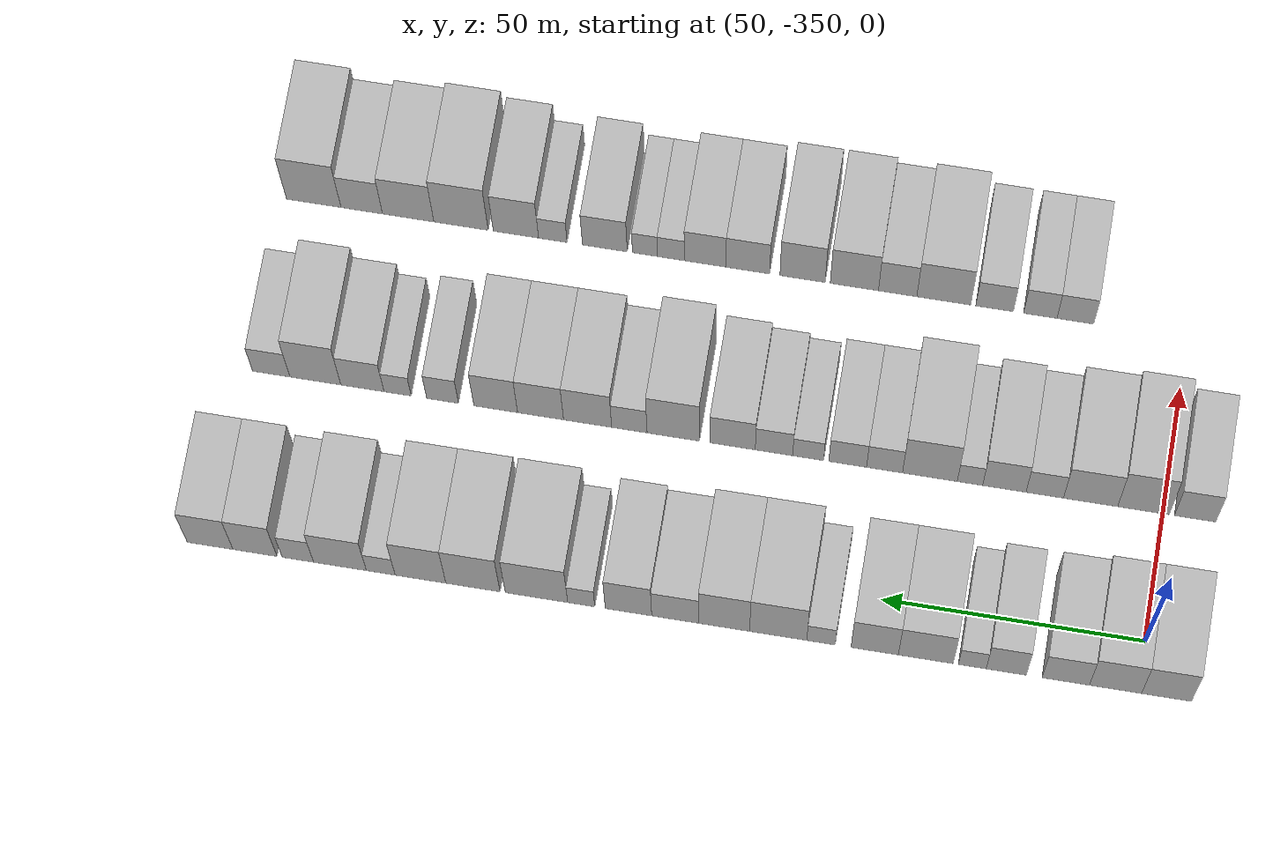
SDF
<sdf version="1.6">
 <world name="default">
  <model name="building_1">
   <static>1</static>
   <pose>50.0000 -355.3003 0 0.000000 0.000000 0.000000</pose>
   <link name="link">
    <pose>0 0 10.50 0 0 0</pose>
    <collision name="collision"><geometry><box><size>20.0000 9.3994 21.0000</size></box></geometry></collision>
    <visual name="visual">
     <cast_shadows>0</cast_shadows>
     <geometry><box><size>20.0000 9.3994 21.0000</size></box></geometry>
     <material>
      <script>
       <uri>model://HANNAS_wall/materials/scripts</uri>
       <uri>model://HANNAS_wall/materials/textures</uri>
       <name>vrc/HANNAS_wall</name>
      </script>
     </material>
    </visual>
   </link>
  </model>
  <model name="building_2">
   <static>1</static>
   <pose>50.0000 -345.6907 0 0.000000 0.000000 0.000000</pose>
   <link name="link">
    <pose>0 0 10.50 0 0 0</pose>
    <collision name="collision"><geometry><box><size>20.0000 9.8198 21.0000</size></box></geometry></collision>
    <visual name="visual">
     <cast_shadows>0</cast_shadows>
     <geometry><box><size>20.0000 9.8198 21.0000</size></box></geometry>
     <material>
      <script>
       <uri>model://HANNAS_wall/materials/scripts</uri>
       <uri>model://HANNAS_wall/materials/textures</uri>
       <name>vrc/HANNAS_wall</name>
      </script>
     </material>
    </visual>
   </link>
  </model>
  <model name="building_3">
   <static>1</static>
   <pose>50.0000 -336.3098 0 0.000000 0.000000 0.000000</pose>
   <link name="link">
    <pose>0 0 9.00 0 0 0</pose>
    <collision name="collision"><geometry><box><size>20.0000 8.9419 18.0000</size></box></geometry></collision>
    <visual name="visual">
     <cast_shadows>0</cast_shadows>
     <geometry><box><size>20.0000 8.9419 18.0000</size></box></geometry>
     <material>
      <script>
       <uri>model://HANNAS_wall/materials/scripts</uri>
       <uri>model://HANNAS_wall/materials/textures</uri>
       <name>vrc/HANNAS_wall</name>
      </script>
     </material>
    </visual>
   </link>
  </model>
  <model name="building_4">
   <static>1</static>
   <pose>50.0000 -325.0578 0 0.000000 0.000000 0.000000</pose>
   <link name="link">
    <pose>0 0 9.00 0 0 0</pose>
    <collision name="collision"><geometry><box><size>20.0000 7.5621 18.0000</size></box></geometry></collision>
    <visual name="visual">
     <cast_shadows>0</cast_shadows>
     <geometry><box><size>20.0000 7.5621 18.0000</size></box></geometry>
     <material>
      <script>
       <uri>model://HANNAS_wall/materials/scripts</uri>
       <uri>model://HANNAS_wall/materials/textures</uri>
       <name>vrc/HANNAS_wall</name>
      </script>
     </material>
    </visual>
   </link>
  </model>
  <model name="building_5">
   <static>1</static>
   <pose>50.0000 -318.6522 0 0.000000 0.000000 0.000000</pose>
   <link name="link">
    <pose>0 0 6.00 0 0 0</pose>
    <collision name="collision"><geometry><box><size>20.0000 5.2492 12.0000</size></box></geometry></collision>
    <visual name="visual">
     <cast_shadows>0</cast_shadows>
     <geometry><box><size>20.0000 5.2492 12.0000</size></box></geometry>
     <material>
      <script>
       <uri>model://HANNAS_wall/materials/scripts</uri>
       <uri>model://HANNAS_wall/materials/textures</uri>
       <name>vrc/HANNAS_wall</name>
      </script>
     </material>
    </visual>
   </link>
  </model>
  <model name="building_6">
   <static>1</static>
   <pose>50.0000 -309.8411 0 0.000000 0.000000 0.000000</pose>
   <link name="link">
    <pose>0 0 10.50 0 0 0</pose>
    <collision name="collision"><geometry><box><size>20.0000 10.3729 21.0000</size></box></geometry></collision>
    <visual name="visual">
     <cast_shadows>0</cast_shadows>
     <geometry><box><size>20.0000 10.3729 21.0000</size></box></geometry>
     <material>
      <script>
       <uri>model://HANNAS_wall/materials/scripts</uri>
       <uri>model://HANNAS_wall/materials/textures</uri>
       <name>vrc/HANNAS_wall</name>
      </script>
     </material>
    </visual>
   </link>
  </model>
  <model name="building_7">
   <static>1</static>
   <pose>50.0000 -300.1779 0 0.000000 0.000000 0.000000</pose>
   <link name="link">
    <pose>0 0 10.50 0 0 0</pose>
    <collision name="collision"><geometry><box><size>20.0000 8.9536 21.0000</size></box></geometry></collision>
    <visual name="visual">
     <cast_shadows>0</cast_shadows>
     <geometry><box><size>20.0000 8.9536 21.0000</size></box></geometry>
     <material>
      <script>
       <uri>model://HANNAS_wall/materials/scripts</uri>
       <uri>model://HANNAS_wall/materials/textures</uri>
       <name>vrc/HANNAS_wall</name>
      </script>
     </material>
    </visual>
   </link>
  </model>
  <model name="building_8">
   <static>1</static>
   <pose>50.0000 -290.0002 0 0.000000 0.000000 0.000000</pose>
   <link name="link">
    <pose>0 0 6.00 0 0 0</pose>
    <collision name="collision"><geometry><box><size>20.0000 5.4017 12.0000</size></box></geometry></collision>
    <visual name="visual">
     <cast_shadows>0</cast_shadows>
     <geometry><box><size>20.0000 5.4017 12.0000</size></box></geometry>
     <material>
      <script>
       <uri>model://HANNAS_wall/materials/scripts</uri>
       <uri>model://HANNAS_wall/materials/textures</uri>
       <name>vrc/HANNAS_wall</name>
      </script>
     </material>
    </visual>
   </link>
  </model>
  <model name="building_9">
   <static>1</static>
   <pose>50.0000 -281.8880 0 0.000000 0.000000 0.000000</pose>
   <link name="link">
    <pose>0 0 12.00 0 0 0</pose>
    <collision name="collision"><geometry><box><size>20.0000 10.8225 24.0000</size></box></geometry></collision>
    <visual name="visual">
     <cast_shadows>0</cast_shadows>
     <geometry><box><size>20.0000 10.8225 24.0000</size></box></geometry>
     <material>
      <script>
       <uri>model://HANNAS_wall/materials/scripts</uri>
       <uri>model://HANNAS_wall/materials/textures</uri>
       <name>vrc/HANNAS_wall</name>
      </script>
     </material>
    </visual>
   </link>
  </model>
  <model name="building_10">
   <static>1</static>
   <pose>50.0000 -271.6227 0 0.000000 0.000000 0.000000</pose>
   <link name="link">
    <pose>0 0 12.00 0 0 0</pose>
    <collision name="collision"><geometry><box><size>20.0000 9.7080 24.0000</size></box></geometry></collision>
    <visual name="visual">
     <cast_shadows>0</cast_shadows>
     <geometry><box><size>20.0000 9.7080 24.0000</size></box></geometry>
     <material>
      <script>
       <uri>model://HANNAS_wall/materials/scripts</uri>
       <uri>model://HANNAS_wall/materials/textures</uri>
       <name>vrc/HANNAS_wall</name>
      </script>
     </material>
    </visual>
   </link>
  </model>
  <model name="building_11">
   <static>1</static>
   <pose>50.0000 -262.3106 0 0.000000 0.000000 0.000000</pose>
   <link name="link">
    <pose>0 0 9.00 0 0 0</pose>
    <collision name="collision"><geometry><box><size>20.0000 8.9163 18.0000</size></box></geometry></collision>
    <visual name="visual">
     <cast_shadows>0</cast_shadows>
     <geometry><box><size>20.0000 8.9163 18.0000</size></box></geometry>
     <material>
      <script>
       <uri>model://HANNAS_wall/materials/scripts</uri>
       <uri>model://HANNAS_wall/materials/textures</uri>
       <name>vrc/HANNAS_wall</name>
      </script>
     </material>
    </visual>
   </link>
  </model>
  <model name="building_12">
   <static>1</static>
   <pose>50.0000 -253.4415 0 0.000000 0.000000 0.000000</pose>
   <link name="link">
    <pose>0 0 10.50 0 0 0</pose>
    <collision name="collision"><geometry><box><size>20.0000 8.8218 21.0000</size></box></geometry></collision>
    <visual name="visual">
     <cast_shadows>0</cast_shadows>
     <geometry><box><size>20.0000 8.8218 21.0000</size></box></geometry>
     <material>
      <script>
       <uri>model://HANNAS_wall/materials/scripts</uri>
       <uri>model://HANNAS_wall/materials/textures</uri>
       <name>vrc/HANNAS_wall</name>
      </script>
     </material>
    </visual>
   </link>
  </model>
  <model name="building_13">
   <static>1</static>
   <pose>50.0000 -244.4483 0 0.000000 0.000000 0.000000</pose>
   <link name="link">
    <pose>0 0 6.00 0 0 0</pose>
    <collision name="collision"><geometry><box><size>20.0000 5.1646 12.0000</size></box></geometry></collision>
    <visual name="visual">
     <cast_shadows>0</cast_shadows>
     <geometry><box><size>20.0000 5.1646 12.0000</size></box></geometry>
     <material>
      <script>
       <uri>model://HANNAS_wall/materials/scripts</uri>
       <uri>model://HANNAS_wall/materials/textures</uri>
       <name>vrc/HANNAS_wall</name>
      </script>
     </material>
    </visual>
   </link>
  </model>
  <model name="building_14">
   <static>1</static>
   <pose>50.0000 -235.9190 0 0.000000 0.000000 0.000000</pose>
   <link name="link">
    <pose>0 0 12.00 0 0 0</pose>
    <collision name="collision"><geometry><box><size>20.0000 11.8939 24.0000</size></box></geometry></collision>
    <visual name="visual">
     <cast_shadows>0</cast_shadows>
     <geometry><box><size>20.0000 11.8939 24.0000</size></box></geometry>
     <material>
      <script>
       <uri>model://HANNAS_wall/materials/scripts</uri>
       <uri>model://HANNAS_wall/materials/textures</uri>
       <name>vrc/HANNAS_wall</name>
      </script>
     </material>
    </visual>
   </link>
  </model>
  <model name="building_15">
   <static>1</static>
   <pose>50.0000 -223.7970 0 0.000000 0.000000 0.000000</pose>
   <link name="link">
    <pose>0 0 12.00 0 0 0</pose>
    <collision name="collision"><geometry><box><size>20.0000 10.3501 24.0000</size></box></geometry></collision>
    <visual name="visual">
     <cast_shadows>0</cast_shadows>
     <geometry><box><size>20.0000 10.3501 24.0000</size></box></geometry>
     <material>
      <script>
       <uri>model://HANNAS_wall/materials/scripts</uri>
       <uri>model://HANNAS_wall/materials/textures</uri>
       <name>vrc/HANNAS_wall</name>
      </script>
     </material>
    </visual>
   </link>
  </model>
  <model name="building_16">
   <static>1</static>
   <pose>50.0000 -213.7750 0 0.000000 0.000000 0.000000</pose>
   <link name="link">
    <pose>0 0 12.00 0 0 0</pose>
    <collision name="collision"><geometry><box><size>20.0000 9.6940 24.0000</size></box></geometry></collision>
    <visual name="visual">
     <cast_shadows>0</cast_shadows>
     <geometry><box><size>20.0000 9.6940 24.0000</size></box></geometry>
     <material>
      <script>
       <uri>model://HANNAS_wall/materials/scripts</uri>
       <uri>model://HANNAS_wall/materials/textures</uri>
       <name>vrc/HANNAS_wall</name>
      </script>
     </material>
    </visual>
   </link>
  </model>
  <model name="building_17">
   <static>1</static>
   <pose>50.0000 -206.1758 0 0.000000 0.000000 0.000000</pose>
   <link name="link">
    <pose>0 0 6.00 0 0 0</pose>
    <collision name="collision"><geometry><box><size>20.0000 5.5044 12.0000</size></box></geometry></collision>
    <visual name="visual">
     <cast_shadows>0</cast_shadows>
     <geometry><box><size>20.0000 5.5044 12.0000</size></box></geometry>
     <material>
      <script>
       <uri>model://HANNAS_wall/materials/scripts</uri>
       <uri>model://HANNAS_wall/materials/textures</uri>
       <name>vrc/HANNAS_wall</name>
      </script>
     </material>
    </visual>
   </link>
  </model>
  <model name="building_18">
   <static>1</static>
   <pose>50.0000 -198.3676 0 0.000000 0.000000 0.000000</pose>
   <link name="link">
    <pose>0 0 10.50 0 0 0</pose>
    <collision name="collision"><geometry><box><size>20.0000 10.1119 21.0000</size></box></geometry></collision>
    <visual name="visual">
     <cast_shadows>0</cast_shadows>
     <geometry><box><size>20.0000 10.1119 21.0000</size></box></geometry>
     <material>
      <script>
       <uri>model://HANNAS_wall/materials/scripts</uri>
       <uri>model://HANNAS_wall/materials/textures</uri>
       <name>vrc/HANNAS_wall</name>
      </script>
     </material>
    </visual>
   </link>
  </model>
  <model name="building_19">
   <static>1</static>
   <pose>50.0000 -190.3090 0 0.000000 0.000000 0.000000</pose>
   <link name="link">
    <pose>0 0 7.50 0 0 0</pose>
    <collision name="collision"><geometry><box><size>20.0000 6.0053 15.0000</size></box></geometry></collision>
    <visual name="visual">
     <cast_shadows>0</cast_shadows>
     <geometry><box><size>20.0000 6.0053 15.0000</size></box></geometry>
     <material>
      <script>
       <uri>model://HANNAS_wall/materials/scripts</uri>
       <uri>model://HANNAS_wall/materials/textures</uri>
       <name>vrc/HANNAS_wall</name>
      </script>
     </material>
    </visual>
   </link>
  </model>
  <model name="building_20">
   <static>1</static>
   <pose>50.0000 -182.0856 0 0.000000 0.000000 0.000000</pose>
   <link name="link">
    <pose>0 0 10.50 0 0 0</pose>
    <collision name="collision"><geometry><box><size>20.0000 8.4416 21.0000</size></box></geometry></collision>
    <visual name="visual">
     <cast_shadows>0</cast_shadows>
     <geometry><box><size>20.0000 8.4416 21.0000</size></box></geometry>
     <material>
      <script>
       <uri>model://HANNAS_wall/materials/scripts</uri>
       <uri>model://HANNAS_wall/materials/textures</uri>
       <name>vrc/HANNAS_wall</name>
      </script>
     </material>
    </visual>
   </link>
  </model>
  <model name="building_21">
   <static>1</static>
   <pose>50.0000 -173.4730 0 0.000000 0.000000 0.000000</pose>
   <link name="link">
    <pose>0 0 10.50 0 0 0</pose>
    <collision name="collision"><geometry><box><size>20.0000 8.7835 21.0000</size></box></geometry></collision>
    <visual name="visual">
     <cast_shadows>0</cast_shadows>
     <geometry><box><size>20.0000 8.7835 21.0000</size></box></geometry>
     <material>
      <script>
       <uri>model://HANNAS_wall/materials/scripts</uri>
       <uri>model://HANNAS_wall/materials/textures</uri>
       <name>vrc/HANNAS_wall</name>
      </script>
     </material>
    </visual>
   </link>
  </model>
  <model name="building_79">
   <static>1</static>
   <pose>85.0000 -356.0684 0 0.000000 0.000000 0.000000</pose>
   <link name="link">
    <pose>0 0 9.00 0 0 0</pose>
    <collision name="collision"><geometry><box><size>20.0000 7.8632 18.0000</size></box></geometry></collision>
    <visual name="visual">
     <cast_shadows>0</cast_shadows>
     <geometry><box><size>20.0000 7.8632 18.0000</size></box></geometry>
     <material>
      <script>
       <uri>model://HANNAS_wall/materials/scripts</uri>
       <uri>model://HANNAS_wall/materials/textures</uri>
       <name>vrc/HANNAS_wall</name>
      </script>
     </material>
    </visual>
   </link>
  </model>
  <model name="building_80">
   <static>1</static>
   <pose>85.0000 -346.2287 0 0.000000 0.000000 0.000000</pose>
   <link name="link">
    <pose>0 0 12.00 0 0 0</pose>
    <collision name="collision"><geometry><box><size>20.0000 9.8162 24.0000</size></box></geometry></collision>
    <visual name="visual">
     <cast_shadows>0</cast_shadows>
     <geometry><box><size>20.0000 9.8162 24.0000</size></box></geometry>
     <material>
      <script>
       <uri>model://HANNAS_wall/materials/scripts</uri>
       <uri>model://HANNAS_wall/materials/textures</uri>
       <name>vrc/HANNAS_wall</name>
      </script>
     </material>
    </visual>
   </link>
  </model>
  <model name="building_81">
   <static>1</static>
   <pose>85.0000 -336.1453 0 0.000000 0.000000 0.000000</pose>
   <link name="link">
    <pose>0 0 10.50 0 0 0</pose>
    <collision name="collision"><geometry><box><size>20.0000 10.3506 21.0000</size></box></geometry></collision>
    <visual name="visual">
     <cast_shadows>0</cast_shadows>
     <geometry><box><size>20.0000 10.3506 21.0000</size></box></geometry>
     <material>
      <script>
       <uri>model://HANNAS_wall/materials/scripts</uri>
       <uri>model://HANNAS_wall/materials/textures</uri>
       <name>vrc/HANNAS_wall</name>
      </script>
     </material>
    </visual>
   </link>
  </model>
  <model name="building_82">
   <static>1</static>
   <pose>85.0000 -327.3931 0 0.000000 0.000000 0.000000</pose>
   <link name="link">
    <pose>0 0 7.50 0 0 0</pose>
    <collision name="collision"><geometry><box><size>20.0000 7.1538 15.0000</size></box></geometry></collision>
    <visual name="visual">
     <cast_shadows>0</cast_shadows>
     <geometry><box><size>20.0000 7.1538 15.0000</size></box></geometry>
     <material>
      <script>
       <uri>model://HANNAS_wall/materials/scripts</uri>
       <uri>model://HANNAS_wall/materials/textures</uri>
       <name>vrc/HANNAS_wall</name>
      </script>
     </material>
    </visual>
   </link>
  </model>
  <model name="building_83">
   <static>1</static>
   <pose>85.0000 -319.6763 0 0.000000 0.000000 0.000000</pose>
   <link name="link">
    <pose>0 0 9.00 0 0 0</pose>
    <collision name="collision"><geometry><box><size>20.0000 8.2796 18.0000</size></box></geometry></collision>
    <visual name="visual">
     <cast_shadows>0</cast_shadows>
     <geometry><box><size>20.0000 8.2796 18.0000</size></box></geometry>
     <material>
      <script>
       <uri>model://HANNAS_wall/materials/scripts</uri>
       <uri>model://HANNAS_wall/materials/textures</uri>
       <name>vrc/HANNAS_wall</name>
      </script>
     </material>
    </visual>
   </link>
  </model>
  <model name="building_84">
   <static>1</static>
   <pose>85.0000 -313.1034 0 0.000000 0.000000 0.000000</pose>
   <link name="link">
    <pose>0 0 6.00 0 0 0</pose>
    <collision name="collision"><geometry><box><size>20.0000 4.8662 12.0000</size></box></geometry></collision>
    <visual name="visual">
     <cast_shadows>0</cast_shadows>
     <geometry><box><size>20.0000 4.8662 12.0000</size></box></geometry>
     <material>
      <script>
       <uri>model://HANNAS_wall/materials/scripts</uri>
       <uri>model://HANNAS_wall/materials/textures</uri>
       <name>vrc/HANNAS_wall</name>
      </script>
     </material>
    </visual>
   </link>
  </model>
  <model name="building_85">
   <static>1</static>
   <pose>85.0000 -305.4305 0 0.000000 0.000000 0.000000</pose>
   <link name="link">
    <pose>0 0 12.00 0 0 0</pose>
    <collision name="collision"><geometry><box><size>20.0000 10.4797 24.0000</size></box></geometry></collision>
    <visual name="visual">
     <cast_shadows>0</cast_shadows>
     <geometry><box><size>20.0000 10.4797 24.0000</size></box></geometry>
     <material>
      <script>
       <uri>model://HANNAS_wall/materials/scripts</uri>
       <uri>model://HANNAS_wall/materials/textures</uri>
       <name>vrc/HANNAS_wall</name>
      </script>
     </material>
    </visual>
   </link>
  </model>
  <model name="building_86">
   <static>1</static>
   <pose>85.0000 -296.7447 0 0.000000 0.000000 0.000000</pose>
   <link name="link">
    <pose>0 0 7.50 0 0 0</pose>
    <collision name="collision"><geometry><box><size>20.0000 6.8918 15.0000</size></box></geometry></collision>
    <visual name="visual">
     <cast_shadows>0</cast_shadows>
     <geometry><box><size>20.0000 6.8918 15.0000</size></box></geometry>
     <material>
      <script>
       <uri>model://HANNAS_wall/materials/scripts</uri>
       <uri>model://HANNAS_wall/materials/textures</uri>
       <name>vrc/HANNAS_wall</name>
      </script>
     </material>
    </visual>
   </link>
  </model>
  <model name="building_87">
   <static>1</static>
   <pose>85.0000 -289.6858 0 0.000000 0.000000 0.000000</pose>
   <link name="link">
    <pose>0 0 7.50 0 0 0</pose>
    <collision name="collision"><geometry><box><size>20.0000 7.2259 15.0000</size></box></geometry></collision>
    <visual name="visual">
     <cast_shadows>0</cast_shadows>
     <geometry><box><size>20.0000 7.2259 15.0000</size></box></geometry>
     <material>
      <script>
       <uri>model://HANNAS_wall/materials/scripts</uri>
       <uri>model://HANNAS_wall/materials/textures</uri>
       <name>vrc/HANNAS_wall</name>
      </script>
     </material>
    </visual>
   </link>
  </model>
  <model name="building_88">
   <static>1</static>
   <pose>85.0000 -282.1029 0 0.000000 0.000000 0.000000</pose>
   <link name="link">
    <pose>0 0 6.00 0 0 0</pose>
    <collision name="collision"><geometry><box><size>20.0000 5.9398 12.0000</size></box></geometry></collision>
    <visual name="visual">
     <cast_shadows>0</cast_shadows>
     <geometry><box><size>20.0000 5.9398 12.0000</size></box></geometry>
     <material>
      <script>
       <uri>model://HANNAS_wall/materials/scripts</uri>
       <uri>model://HANNAS_wall/materials/textures</uri>
       <name>vrc/HANNAS_wall</name>
      </script>
     </material>
    </visual>
   </link>
  </model>
  <model name="building_89">
   <static>1</static>
   <pose>85.0000 -275.5448 0 0.000000 0.000000 0.000000</pose>
   <link name="link">
    <pose>0 0 7.50 0 0 0</pose>
    <collision name="collision"><geometry><box><size>20.0000 7.1764 15.0000</size></box></geometry></collision>
    <visual name="visual">
     <cast_shadows>0</cast_shadows>
     <geometry><box><size>20.0000 7.1764 15.0000</size></box></geometry>
     <material>
      <script>
       <uri>model://HANNAS_wall/materials/scripts</uri>
       <uri>model://HANNAS_wall/materials/textures</uri>
       <name>vrc/HANNAS_wall</name>
      </script>
     </material>
    </visual>
   </link>
  </model>
  <model name="building_90">
   <static>1</static>
   <pose>85.0000 -267.5964 0 0.000000 0.000000 0.000000</pose>
   <link name="link">
    <pose>0 0 9.00 0 0 0</pose>
    <collision name="collision"><geometry><box><size>20.0000 8.7204 18.0000</size></box></geometry></collision>
    <visual name="visual">
     <cast_shadows>0</cast_shadows>
     <geometry><box><size>20.0000 8.7204 18.0000</size></box></geometry>
     <material>
      <script>
       <uri>model://HANNAS_wall/materials/scripts</uri>
       <uri>model://HANNAS_wall/materials/textures</uri>
       <name>vrc/HANNAS_wall</name>
      </script>
     </material>
    </visual>
   </link>
  </model>
  <model name="building_91">
   <static>1</static>
   <pose>85.0000 -256.1944 0 0.000000 0.000000 0.000000</pose>
   <link name="link">
    <pose>0 0 12.00 0 0 0</pose>
    <collision name="collision"><geometry><box><size>20.0000 10.0835 24.0000</size></box></geometry></collision>
    <visual name="visual">
     <cast_shadows>0</cast_shadows>
     <geometry><box><size>20.0000 10.0835 24.0000</size></box></geometry>
     <material>
      <script>
       <uri>model://HANNAS_wall/materials/scripts</uri>
       <uri>model://HANNAS_wall/materials/textures</uri>
       <name>vrc/HANNAS_wall</name>
      </script>
     </material>
    </visual>
   </link>
  </model>
  <model name="building_92">
   <static>1</static>
   <pose>85.0000 -247.7462 0 0.000000 0.000000 0.000000</pose>
   <link name="link">
    <pose>0 0 7.50 0 0 0</pose>
    <collision name="collision"><geometry><box><size>20.0000 6.8129 15.0000</size></box></geometry></collision>
    <visual name="visual">
     <cast_shadows>0</cast_shadows>
     <geometry><box><size>20.0000 6.8129 15.0000</size></box></geometry>
     <material>
      <script>
       <uri>model://HANNAS_wall/materials/scripts</uri>
       <uri>model://HANNAS_wall/materials/textures</uri>
       <name>vrc/HANNAS_wall</name>
      </script>
     </material>
    </visual>
   </link>
  </model>
  <model name="building_93">
   <static>1</static>
   <pose>85.0000 -239.7026 0 0.000000 0.000000 0.000000</pose>
   <link name="link">
    <pose>0 0 10.50 0 0 0</pose>
    <collision name="collision"><geometry><box><size>20.0000 9.2744 21.0000</size></box></geometry></collision>
    <visual name="visual">
     <cast_shadows>0</cast_shadows>
     <geometry><box><size>20.0000 9.2744 21.0000</size></box></geometry>
     <material>
      <script>
       <uri>model://HANNAS_wall/materials/scripts</uri>
       <uri>model://HANNAS_wall/materials/textures</uri>
       <name>vrc/HANNAS_wall</name>
      </script>
     </material>
    </visual>
   </link>
  </model>
  <model name="building_94">
   <static>1</static>
   <pose>85.0000 -230.6283 0 0.000000 0.000000 0.000000</pose>
   <link name="link">
    <pose>0 0 10.50 0 0 0</pose>
    <collision name="collision"><geometry><box><size>20.0000 8.8742 21.0000</size></box></geometry></collision>
    <visual name="visual">
     <cast_shadows>0</cast_shadows>
     <geometry><box><size>20.0000 8.8742 21.0000</size></box></geometry>
     <material>
      <script>
       <uri>model://HANNAS_wall/materials/scripts</uri>
       <uri>model://HANNAS_wall/materials/textures</uri>
       <name>vrc/HANNAS_wall</name>
      </script>
     </material>
    </visual>
   </link>
  </model>
  <model name="building_95">
   <static>1</static>
   <pose>85.0000 -221.9841 0 0.000000 0.000000 0.000000</pose>
   <link name="link">
    <pose>0 0 10.50 0 0 0</pose>
    <collision name="collision"><geometry><box><size>20.0000 8.4141 21.0000</size></box></geometry></collision>
    <visual name="visual">
     <cast_shadows>0</cast_shadows>
     <geometry><box><size>20.0000 8.4141 21.0000</size></box></geometry>
     <material>
      <script>
       <uri>model://HANNAS_wall/materials/scripts</uri>
       <uri>model://HANNAS_wall/materials/textures</uri>
       <name>vrc/HANNAS_wall</name>
      </script>
     </material>
    </visual>
   </link>
  </model>
  <model name="building_96">
   <static>1</static>
   <pose>85.0000 -211.7108 0 0.000000 0.000000 0.000000</pose>
   <link name="link">
    <pose>0 0 7.50 0 0 0</pose>
    <collision name="collision"><geometry><box><size>20.0000 6.1327 15.0000</size></box></geometry></collision>
    <visual name="visual">
     <cast_shadows>0</cast_shadows>
     <geometry><box><size>20.0000 6.1327 15.0000</size></box></geometry>
     <material>
      <script>
       <uri>model://HANNAS_wall/materials/scripts</uri>
       <uri>model://HANNAS_wall/materials/textures</uri>
       <name>vrc/HANNAS_wall</name>
      </script>
     </material>
    </visual>
   </link>
  </model>
  <model name="building_97">
   <static>1</static>
   <pose>85.0000 -203.0114 0 0.000000 0.000000 0.000000</pose>
   <link name="link">
    <pose>0 0 6.00 0 0 0</pose>
    <collision name="collision"><geometry><box><size>20.0000 5.2661 12.0000</size></box></geometry></collision>
    <visual name="visual">
     <cast_shadows>0</cast_shadows>
     <geometry><box><size>20.0000 5.2661 12.0000</size></box></geometry>
     <material>
      <script>
       <uri>model://HANNAS_wall/materials/scripts</uri>
       <uri>model://HANNAS_wall/materials/textures</uri>
       <name>vrc/HANNAS_wall</name>
      </script>
     </material>
    </visual>
   </link>
  </model>
  <model name="building_98">
   <static>1</static>
   <pose>85.0000 -196.1985 0 0.000000 0.000000 0.000000</pose>
   <link name="link">
    <pose>0 0 9.00 0 0 0</pose>
    <collision name="collision"><geometry><box><size>20.0000 8.3597 18.0000</size></box></geometry></collision>
    <visual name="visual">
     <cast_shadows>0</cast_shadows>
     <geometry><box><size>20.0000 8.3597 18.0000</size></box></geometry>
     <material>
      <script>
       <uri>model://HANNAS_wall/materials/scripts</uri>
       <uri>model://HANNAS_wall/materials/textures</uri>
       <name>vrc/HANNAS_wall</name>
      </script>
     </material>
    </visual>
   </link>
  </model>
  <model name="building_99">
   <static>1</static>
   <pose>85.0000 -187.0861 0 0.000000 0.000000 0.000000</pose>
   <link name="link">
    <pose>0 0 12.00 0 0 0</pose>
    <collision name="collision"><geometry><box><size>20.0000 9.8649 24.0000</size></box></geometry></collision>
    <visual name="visual">
     <cast_shadows>0</cast_shadows>
     <geometry><box><size>20.0000 9.8649 24.0000</size></box></geometry>
     <material>
      <script>
       <uri>model://HANNAS_wall/materials/scripts</uri>
       <uri>model://HANNAS_wall/materials/textures</uri>
       <name>vrc/HANNAS_wall</name>
      </script>
     </material>
    </visual>
   </link>
  </model>
  <model name="building_100">
   <static>1</static>
   <pose>85.0000 -178.5390 0 0.000000 0.000000 0.000000</pose>
   <link name="link">
    <pose>0 0 7.50 0 0 0</pose>
    <collision name="collision"><geometry><box><size>20.0000 7.2293 15.0000</size></box></geometry></collision>
    <visual name="visual">
     <cast_shadows>0</cast_shadows>
     <geometry><box><size>20.0000 7.2293 15.0000</size></box></geometry>
     <material>
      <script>
       <uri>model://HANNAS_wall/materials/scripts</uri>
       <uri>model://HANNAS_wall/materials/textures</uri>
       <name>vrc/HANNAS_wall</name>
      </script>
     </material>
    </visual>
   </link>
  </model>
  <model name="building_164">
   <static>1</static>
   <pose>120.0000 -328.3594 0 0.000000 0.000000 0.000000</pose>
   <link name="link">
    <pose>0 0 7.50 0 0 0</pose>
    <collision name="collision"><geometry><box><size>20.0000 7.0937 15.0000</size></box></geometry></collision>
    <visual name="visual">
     <cast_shadows>0</cast_shadows>
     <geometry><box><size>20.0000 7.0937 15.0000</size></box></geometry>
     <material>
      <script>
       <uri>model://HANNAS_wall/materials/scripts</uri>
       <uri>model://HANNAS_wall/materials/textures</uri>
       <name>vrc/HANNAS_wall</name>
      </script>
     </material>
    </visual>
   </link>
  </model>
  <model name="building_165">
   <static>1</static>
   <pose>120.0000 -321.5940 0 0.000000 0.000000 0.000000</pose>
   <link name="link">
    <pose>0 0 7.50 0 0 0</pose>
    <collision name="collision"><geometry><box><size>20.0000 6.4371 15.0000</size></box></geometry></collision>
    <visual name="visual">
     <cast_shadows>0</cast_shadows>
     <geometry><box><size>20.0000 6.4371 15.0000</size></box></geometry>
     <material>
      <script>
       <uri>model://HANNAS_wall/materials/scripts</uri>
       <uri>model://HANNAS_wall/materials/textures</uri>
       <name>vrc/HANNAS_wall</name>
      </script>
     </material>
    </visual>
   </link>
  </model>
  <model name="building_166">
   <static>1</static>
   <pose>120.0000 -312.7510 0 0.000000 0.000000 0.000000</pose>
   <link name="link">
    <pose>0 0 7.50 0 0 0</pose>
    <collision name="collision"><geometry><box><size>20.0000 7.2491 15.0000</size></box></geometry></collision>
    <visual name="visual">
     <cast_shadows>0</cast_shadows>
     <geometry><box><size>20.0000 7.2491 15.0000</size></box></geometry>
     <material>
      <script>
       <uri>model://HANNAS_wall/materials/scripts</uri>
       <uri>model://HANNAS_wall/materials/textures</uri>
       <name>vrc/HANNAS_wall</name>
      </script>
     </material>
    </visual>
   </link>
  </model>
  <model name="building_167">
   <static>1</static>
   <pose>120.0000 -302.9146 0 0.000000 0.000000 0.000000</pose>
   <link name="link">
    <pose>0 0 10.50 0 0 0</pose>
    <collision name="collision"><geometry><box><size>20.0000 10.4237 21.0000</size></box></geometry></collision>
    <visual name="visual">
     <cast_shadows>0</cast_shadows>
     <geometry><box><size>20.0000 10.4237 21.0000</size></box></geometry>
     <material>
      <script>
       <uri>model://HANNAS_wall/materials/scripts</uri>
       <uri>model://HANNAS_wall/materials/textures</uri>
       <name>vrc/HANNAS_wall</name>
      </script>
     </material>
    </visual>
   </link>
  </model>
  <model name="building_168">
   <static>1</static>
   <pose>120.0000 -293.9839 0 0.000000 0.000000 0.000000</pose>
   <link name="link">
    <pose>0 0 9.00 0 0 0</pose>
    <collision name="collision"><geometry><box><size>20.0000 7.4377 18.0000</size></box></geometry></collision>
    <visual name="visual">
     <cast_shadows>0</cast_shadows>
     <geometry><box><size>20.0000 7.4377 18.0000</size></box></geometry>
     <material>
      <script>
       <uri>model://HANNAS_wall/materials/scripts</uri>
       <uri>model://HANNAS_wall/materials/textures</uri>
       <name>vrc/HANNAS_wall</name>
      </script>
     </material>
    </visual>
   </link>
  </model>
  <model name="building_169">
   <static>1</static>
   <pose>120.0000 -285.5975 0 0.000000 0.000000 0.000000</pose>
   <link name="link">
    <pose>0 0 10.50 0 0 0</pose>
    <collision name="collision"><geometry><box><size>20.0000 9.3351 21.0000</size></box></geometry></collision>
    <visual name="visual">
     <cast_shadows>0</cast_shadows>
     <geometry><box><size>20.0000 9.3351 21.0000</size></box></geometry>
     <material>
      <script>
       <uri>model://HANNAS_wall/materials/scripts</uri>
       <uri>model://HANNAS_wall/materials/textures</uri>
       <name>vrc/HANNAS_wall</name>
      </script>
     </material>
    </visual>
   </link>
  </model>
  <model name="building_170">
   <static>1</static>
   <pose>120.0000 -275.5472 0 0.000000 0.000000 0.000000</pose>
   <link name="link">
    <pose>0 0 10.50 0 0 0</pose>
    <collision name="collision"><geometry><box><size>20.0000 8.7654 21.0000</size></box></geometry></collision>
    <visual name="visual">
     <cast_shadows>0</cast_shadows>
     <geometry><box><size>20.0000 8.7654 21.0000</size></box></geometry>
     <material>
      <script>
       <uri>model://HANNAS_wall/materials/scripts</uri>
       <uri>model://HANNAS_wall/materials/textures</uri>
       <name>vrc/HANNAS_wall</name>
      </script>
     </material>
    </visual>
   </link>
  </model>
  <model name="building_171">
   <static>1</static>
   <pose>120.0000 -264.9285 0 0.000000 0.000000 0.000000</pose>
   <link name="link">
    <pose>0 0 9.00 0 0 0</pose>
    <collision name="collision"><geometry><box><size>20.0000 8.4720 18.0000</size></box></geometry></collision>
    <visual name="visual">
     <cast_shadows>0</cast_shadows>
     <geometry><box><size>20.0000 8.4720 18.0000</size></box></geometry>
     <material>
      <script>
       <uri>model://HANNAS_wall/materials/scripts</uri>
       <uri>model://HANNAS_wall/materials/textures</uri>
       <name>vrc/HANNAS_wall</name>
      </script>
     </material>
    </visual>
   </link>
  </model>
  <model name="building_172">
   <static>1</static>
   <pose>120.0000 -256.6552 0 0.000000 0.000000 0.000000</pose>
   <link name="link">
    <pose>0 0 9.00 0 0 0</pose>
    <collision name="collision"><geometry><box><size>20.0000 8.0746 18.0000</size></box></geometry></collision>
    <visual name="visual">
     <cast_shadows>0</cast_shadows>
     <geometry><box><size>20.0000 8.0746 18.0000</size></box></geometry>
     <material>
      <script>
       <uri>model://HANNAS_wall/materials/scripts</uri>
       <uri>model://HANNAS_wall/materials/textures</uri>
       <name>vrc/HANNAS_wall</name>
      </script>
     </material>
    </visual>
   </link>
  </model>
  <model name="building_173">
   <static>1</static>
   <pose>120.0000 -249.9927 0 0.000000 0.000000 0.000000</pose>
   <link name="link">
    <pose>0 0 6.00 0 0 0</pose>
    <collision name="collision"><geometry><box><size>20.0000 5.2503 12.0000</size></box></geometry></collision>
    <visual name="visual">
     <cast_shadows>0</cast_shadows>
     <geometry><box><size>20.0000 5.2503 12.0000</size></box></geometry>
     <material>
      <script>
       <uri>model://HANNAS_wall/materials/scripts</uri>
       <uri>model://HANNAS_wall/materials/textures</uri>
       <name>vrc/HANNAS_wall</name>
      </script>
     </material>
    </visual>
   </link>
  </model>
  <model name="building_174">
   <static>1</static>
   <pose>120.0000 -244.9225 0 0.000000 0.000000 0.000000</pose>
   <link name="link">
    <pose>0 0 6.00 0 0 0</pose>
    <collision name="collision"><geometry><box><size>20.0000 4.8901 12.0000</size></box></geometry></collision>
    <visual name="visual">
     <cast_shadows>0</cast_shadows>
     <geometry><box><size>20.0000 4.8901 12.0000</size></box></geometry>
     <material>
      <script>
       <uri>model://HANNAS_wall/materials/scripts</uri>
       <uri>model://HANNAS_wall/materials/textures</uri>
       <name>vrc/HANNAS_wall</name>
      </script>
     </material>
    </visual>
   </link>
  </model>
  <model name="building_175">
   <static>1</static>
   <pose>120.0000 -237.1078 0 0.000000 0.000000 0.000000</pose>
   <link name="link">
    <pose>0 0 9.00 0 0 0</pose>
    <collision name="collision"><geometry><box><size>20.0000 8.7393 18.0000</size></box></geometry></collision>
    <visual name="visual">
     <cast_shadows>0</cast_shadows>
     <geometry><box><size>20.0000 8.7393 18.0000</size></box></geometry>
     <material>
      <script>
       <uri>model://HANNAS_wall/materials/scripts</uri>
       <uri>model://HANNAS_wall/materials/textures</uri>
       <name>vrc/HANNAS_wall</name>
      </script>
     </material>
    </visual>
   </link>
  </model>
  <model name="building_176">
   <static>1</static>
   <pose>120.0000 -226.9609 0 0.000000 0.000000 0.000000</pose>
   <link name="link">
    <pose>0 0 6.00 0 0 0</pose>
    <collision name="collision"><geometry><box><size>20.0000 5.5546 12.0000</size></box></geometry></collision>
    <visual name="visual">
     <cast_shadows>0</cast_shadows>
     <geometry><box><size>20.0000 5.5546 12.0000</size></box></geometry>
     <material>
      <script>
       <uri>model://HANNAS_wall/materials/scripts</uri>
       <uri>model://HANNAS_wall/materials/textures</uri>
       <name>vrc/HANNAS_wall</name>
      </script>
     </material>
    </visual>
   </link>
  </model>
  <model name="building_177">
   <static>1</static>
   <pose>120.0000 -219.7596 0 0.000000 0.000000 0.000000</pose>
   <link name="link">
    <pose>0 0 10.50 0 0 0</pose>
    <collision name="collision"><geometry><box><size>20.0000 8.8481 21.0000</size></box></geometry></collision>
    <visual name="visual">
     <cast_shadows>0</cast_shadows>
     <geometry><box><size>20.0000 8.8481 21.0000</size></box></geometry>
     <material>
      <script>
       <uri>model://HANNAS_wall/materials/scripts</uri>
       <uri>model://HANNAS_wall/materials/textures</uri>
       <name>vrc/HANNAS_wall</name>
      </script>
     </material>
    </visual>
   </link>
  </model>
  <model name="building_178">
   <static>1</static>
   <pose>120.0000 -209.0304 0 0.000000 0.000000 0.000000</pose>
   <link name="link">
    <pose>0 0 12.00 0 0 0</pose>
    <collision name="collision"><geometry><box><size>20.0000 10.6102 24.0000</size></box></geometry></collision>
    <visual name="visual">
     <cast_shadows>0</cast_shadows>
     <geometry><box><size>20.0000 10.6102 24.0000</size></box></geometry>
     <material>
      <script>
       <uri>model://HANNAS_wall/materials/scripts</uri>
       <uri>model://HANNAS_wall/materials/textures</uri>
       <name>vrc/HANNAS_wall</name>
      </script>
     </material>
    </visual>
   </link>
  </model>
  <model name="building_179">
   <static>1</static>
   <pose>120.0000 -198.7005 0 0.000000 0.000000 0.000000</pose>
   <link name="link">
    <pose>0 0 10.50 0 0 0</pose>
    <collision name="collision"><geometry><box><size>20.0000 10.0496 21.0000</size></box></geometry></collision>
    <visual name="visual">
     <cast_shadows>0</cast_shadows>
     <geometry><box><size>20.0000 10.0496 21.0000</size></box></geometry>
     <material>
      <script>
       <uri>model://HANNAS_wall/materials/scripts</uri>
       <uri>model://HANNAS_wall/materials/textures</uri>
       <name>vrc/HANNAS_wall</name>
      </script>
     </material>
    </visual>
   </link>
  </model>
  <model name="building_180">
   <static>1</static>
   <pose>120.0000 -189.6062 0 0.000000 0.000000 0.000000</pose>
   <link name="link">
    <pose>0 0 9.00 0 0 0</pose>
    <collision name="collision"><geometry><box><size>20.0000 8.1390 18.0000</size></box></geometry></collision>
    <visual name="visual">
     <cast_shadows>0</cast_shadows>
     <geometry><box><size>20.0000 8.1390 18.0000</size></box></geometry>
     <material>
      <script>
       <uri>model://HANNAS_wall/materials/scripts</uri>
       <uri>model://HANNAS_wall/materials/textures</uri>
       <name>vrc/HANNAS_wall</name>
      </script>
     </material>
    </visual>
   </link>
  </model>
  <model name="building_181">
   <static>1</static>
   <pose>120.0000 -180.1995 0 0.000000 0.000000 0.000000</pose>
   <link name="link">
    <pose>0 0 12.00 0 0 0</pose>
    <collision name="collision"><geometry><box><size>20.0000 10.6744 24.0000</size></box></geometry></collision>
    <visual name="visual">
     <cast_shadows>0</cast_shadows>
     <geometry><box><size>20.0000 10.6744 24.0000</size></box></geometry>
     <material>
      <script>
       <uri>model://HANNAS_wall/materials/scripts</uri>
       <uri>model://HANNAS_wall/materials/textures</uri>
       <name>vrc/HANNAS_wall</name>
      </script>
     </material>
    </visual>
   </link>
  </model>
 </world>
</sdf>
